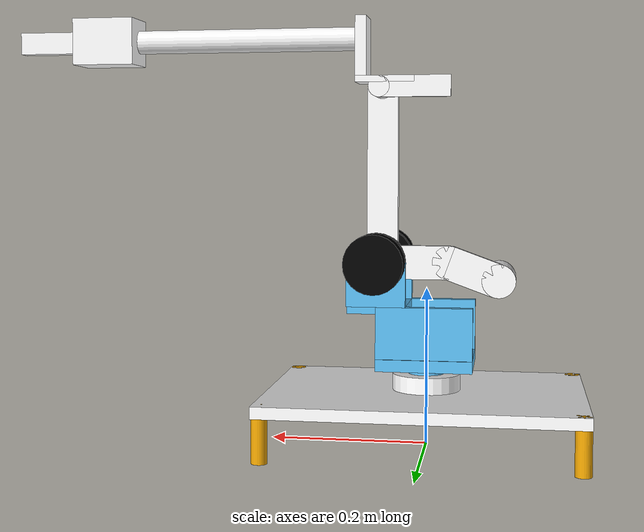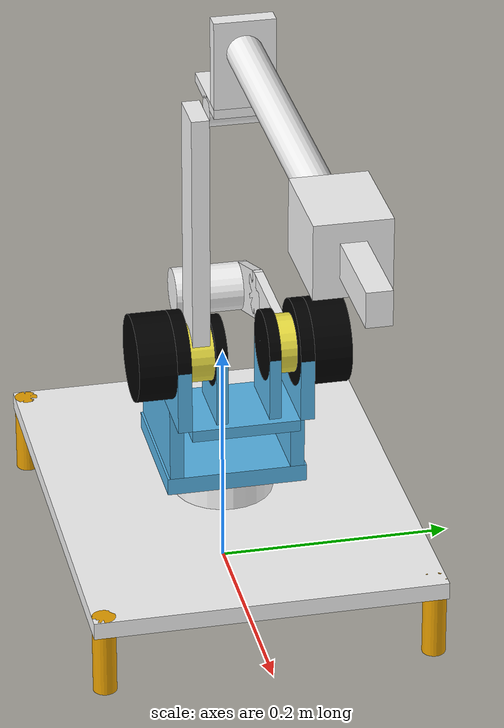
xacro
<?xml version="1.0"?>
<robot xmlns:xacro="http://www.ros.org/wiki/xacro" name="vr">
    <xacro:arg name="initial_positions_file" default="initial_positions.yaml" />

    <!-- Import vr_hand urdf file -->
    <xacro:include filename="$(find vr)/config/vr.urdf" />

    <!-- Import control_xacro -->
    <xacro:include filename="vr.ros2_control.xacro" />

    <xacro:vr_ros2_control name="vr" initial_positions_file="$(arg initial_positions_file)"/>

</robot>

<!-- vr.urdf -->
<robot name="vr">

    <material name="grey">
        <color rgba="0.97 0.97 0.97 1"/>
    </material>

    <material name="black">
        <color rgba="0 0 0 1"/>
    </material>

    <link name="base_link">
        <visual>
          <origin rpy="0 0 0" xyz="0 0 0.0625" />
          <geometry>
            <box size ="0.4 0.3 0.015"/>
          </geometry>

          <material name="grey"/>
        </visual>

        <collision>
            <origin rpy="0 0 0" xyz="0 0 0.0625" />
            <geometry>
              <box size ="0.4 0.3 0.015"/>
            </geometry>
        </collision>

        <visual>
            <origin rpy="0 0 0" xyz="0.19 0.14 0.035" />
            <geometry>
                <cylinder radius="0.01" length="0.07" />
            </geometry>

        </visual>

        <collision>
           <origin rpy="0 0 0" xyz="0.19 0.14 0.035" />
            <geometry>
                <cylinder radius="0.01" length="0.07" />
            </geometry>
        </collision>

        <visual>
            <origin rpy="0 0 0" xyz="-0.19 0.14 0.035" />
            <geometry>
                <cylinder radius="0.01" length="0.07" />
            </geometry>

        </visual>

        <collision>
            <origin rpy="0 0 0" xyz="-0.19 0.14 0.035" />
            <geometry>
                <cylinder radius="0.01" length="0.07" />
            </geometry>
        </collision>
        <visual>
            <origin rpy="0 0 0" xyz="0.19 -0.14 0.035" />
            <geometry>
                <cylinder radius="0.01" length="0.07" />
            </geometry>

        </visual>

        <collision>
            <origin rpy="0 0 0" xyz="0.19 -0.14 0.035" />
            <geometry>
                <cylinder radius="0.01" length="0.07" />
            </geometry>
        </collision>

        <visual>
            <origin rpy="0 0 0" xyz="-0.19 -0.14 0.035" />
            <geometry>
                <cylinder radius="0.01" length="0.07" />
            </geometry>

        </visual>

        <collision>
            <origin rpy="0 0 0" xyz="-0.19 -0.14 0.035" />
            <geometry>
                <cylinder radius="0.01" length="0.07" />
            </geometry>
        </collision>
    </link>

    <joint name="base_link__link_01" type="revolute">
        <axis xyz="0 0 1"/>
        <limit effort="1000.0" lower="-3.14" upper="3.14" velocity="0.5"/>
        <origin rpy="0 0 0" xyz="0 0 0.07"/>
        <parent link="base_link"/>
        <child link="link_01"/>

    </joint>

    <link name="link_01">
        <visual>
            <origin rpy="0 0 0" xyz="0 0 0.0105" />
            <geometry>
                <cylinder radius="0.043" length="0.021" />
            </geometry>
            <material name="grey"/>
        </visual>

        <collision>
            <origin rpy="0 0 0" xyz="0 0 0.0105" />
            <geometry>
                <cylinder radius="0.043" length="0.021" />
            </geometry>
        </collision>

        <visual>
            <origin rpy="0 0 0" xyz="0 0 0.026" />
            <geometry>
                <cylinder radius="0.023" length="0.01" />
            </geometry>
        </visual>

        <collision>
           <origin rpy="0 0 0" xyz="0 0 0.026" />
            <geometry>
                <cylinder radius="0.023" length="0.01" />
            </geometry>
        </collision>

        <visual>
            <origin rpy="0 0 0" xyz="0 0 0.0385" />
            <geometry>
                <box size ="0.120 0.120 0.015"/>
            </geometry>

        </visual>

        <collision>
            <origin rpy="0 0 0" xyz="0 0 0.0385" />
            <geometry>
                <box size ="0.120 0.120 0.015"/>
            </geometry>
        </collision>

        <visual>
            <origin rpy="0 0 0" xyz="0 0.052 0.0785" />
            <geometry>
                <box size ="0.120 0.012 0.065"/>
            </geometry>

        </visual>

        <collision>
            <origin rpy="0 0 0" xyz="0 0.052 0.0785" />
            <geometry>
                <box size ="0.120 0.012 0.065"/>
            </geometry>
        </collision>

        <visual>
            <origin rpy="0 0 0" xyz="0.06 0.052 0.1385" />
            <geometry>
                <box size ="0.074 0.012 0.055"/>
            </geometry>

        </visual>

       <collision>
             <origin rpy="0 0 0" xyz="0.06 0.052 0.1385" />
            <geometry>
                <box size ="0.074 0.012 0.055"/>
            </geometry>
       </collision>

        <visual>
            <origin rpy="0 0 0" xyz="0.0 -0.052 0.0785" />
            <geometry>
                <box size ="0.120 0.012 0.065"/>
            </geometry>

        </visual>

        <collision>
            <origin rpy="0 0 0" xyz="0.0 -0.052 0.0785" />
            <geometry>
                <box size ="0.120 0.012 0.065"/>
            </geometry>
        </collision>

        <visual>
            <origin rpy="0 0 0" xyz="0.06 -0.052 0.1385" />
            <geometry>
                <box size ="0.074 0.012 0.055"/>
            </geometry>

        </visual>

        <collision>
           <origin rpy="0 0 0" xyz="0.06 -0.052 0.1385" />
            <geometry>
                <box size ="0.074 0.012 0.055"/>
            </geometry>
        </collision>

        <visual>
            <origin rpy="1.57 0 0" xyz="0.06 -0.052 0.166" />
            <geometry>
                <cylinder radius="0.037" length="0.012"/>
            </geometry>
            <material name="black"/>

        </visual>

        <collision>
            <origin rpy="1.57 0 0" xyz="0.06 -0.052 0.166" />
            <geometry>
                <cylinder radius="0.037" length="0.012"/>
            </geometry>
        </collision>

        <visual>
            <origin rpy="1.57 0 0" xyz="0.06 0.052 0.166" />
            <geometry>
                <cylinder radius="0.037" length="0.012"/>
            </geometry>
            <material name="black"/>
        </visual>

        <collision>
            <origin rpy="1.57 0 0" xyz="0.06 0.052 0.166" />
            <geometry>
                <cylinder radius="0.037" length="0.012"/>
            </geometry>
        </collision>

        <visual>
            <origin rpy="0 0 0" xyz="0.06 0 0.106" />
            <geometry>
                <box size ="0.074 0.092 0.01"/>
            </geometry>

        </visual>

        <collision>
            <origin rpy="0 0 0" xyz="0.06 0 0.106" />
            <geometry>
                <box size ="0.074 0.092 0.01"/>
            </geometry>
        </collision>

        <visual>
            <origin rpy="0 0 0" xyz="0.06 -0.019 0.1385" />
            <geometry>
                <box size ="0.06 0.01 0.055"/>
            </geometry>

        </visual>

        <collision>
           <origin rpy="0 0 0" xyz="0.06 -0.019 0.1385" />
            <geometry>
                <box size ="0.06 0.01 0.055"/>
            </geometry>
        </collision>

        <visual>
            <origin rpy="0 0 0" xyz="0.06 0.026 0.1385" />
            <geometry>
                <box size ="0.06 0.01 0.055"/>
            </geometry>

        </visual>
        <collision>
            <origin rpy="0 0 0" xyz="0.06 0.026 0.1385" />
            <geometry>
                <box size ="0.06 0.01 0.055"/>
            </geometry>
        </collision>

        <visual>
            <origin rpy="1.57 0 0" xyz="0.06 0.026 0.166" />
            <geometry>
                <cylinder radius="0.03" length="0.01"/>
            </geometry>
            <material name="black"/>

        </visual>

        <collision>
             <origin rpy="1.57 0 0" xyz="0.06 0.026 0.166" />
            <geometry>
                <cylinder radius="0.03" length="0.01"/>
            </geometry>
        </collision>

        <visual>
            <origin rpy="1.57 0 0" xyz="0.06 -0.019 0.166" />
            <geometry>
                <cylinder radius="0.03" length="0.01"/>
            </geometry>
            <material name="black"/>

        </visual>

        <collision>
            <origin rpy="1.57 0 0" xyz="0.06 -0.019 0.166" />
            <geometry>
                <cylinder radius="0.03" length="0.01"/>
            </geometry>
        </collision>

    </link>

    <joint name="link_01__link_02" type="revolute">
        <axis xyz="0 0 1"/>
        <limit effort="1000.0" lower="-3.14" upper="3.14" velocity="0.5"/>
        <origin rpy="1.57 0 0" xyz="0.06 0 0.166"/>
        <parent link="link_01"/>

        <child link="link_02"/>
    </joint>

    <link name="link_02">

        <visual>
            <origin rpy="0 0 0" xyz="0 0 0.074" />
            <geometry>
                <cylinder radius="0.037" length="0.032"/>
            </geometry>
            <material name="black"/>

        </visual>

        <collision>
            <origin rpy="0 0 0" xyz="0 0 0.074" />
            <geometry>
                <cylinder radius="0.037" length="0.032"/>
            </geometry>
        </collision>

        <visual>
            <origin rpy="0 0 0" xyz="0 0 -0.074" />
            <geometry>
                <cylinder radius="0.037" length="0.032"/>
            </geometry>
            <material name="black"/>

        </visual>

        <collision>
           <origin rpy="0 0 0" xyz="0 0 -0.074" />
            <geometry>
                <cylinder radius="0.037" length="0.032"/>
            </geometry>
        </collision>

    </link>

    <joint name="link_02__link_02_par" type="fixed">
        <origin rpy="0 0 0" xyz="0 0.11 0"/>
        <parent link="link_02"/>
        <child link="link_02_par"/>
    </joint>

    <link name="link_02_par">

       <visual>
            <origin rpy="0 0 0" xyz="0 0 0.0345" />
            <geometry>
                <box size ="0.040 0.220 0.015"/>
            </geometry>

            <material name="grey"/>
        </visual>

       <collision>
            <origin rpy="0 0 0" xyz="0 0 0.0345" />
            <geometry>
                <box size ="0.040 0.220 0.015"/>
            </geometry>
        </collision>

        <visual>
            <origin rpy="0 0 0" xyz="0 -0.11 0.041" />
            <geometry>
                <cylinder radius="0.025" length="0.034"/>
            </geometry>

        </visual>

       <collision>
             <origin rpy="0 0 0" xyz="0 -0.11 0.041" />
            <geometry>
                <cylinder radius="0.025" length="0.034"/>
            </geometry>
        </collision>

        <visual>
            <origin rpy="0 0 0" xyz="0 -0.11 -0.0445" />
            <geometry>
                <cylinder radius="0.025" length="0.027"/>
            </geometry>

        </visual>

        <collision>
            <origin rpy="0 0 0" xyz="0 -0.11 -0.0445" />
            <geometry>
                <cylinder radius="0.025" length="0.027"/>
            </geometry>
        </collision>

    </link>

    <joint name="link_02__link_02_mim" type="revolute">
        <axis xyz="0 0 1"/>
        <limit effort="1000.0" lower="-3.14" upper="3.14" velocity="0.5"/>
        <origin rpy="0 0 1.57" xyz="0 0.220 0"/>
        <parent link="link_02"/>
        <child link="link_02_mim"/>
        <mimic joint="link_01__link_02" multiplier="-1" offset="0" />
    </joint>

    <link name="link_02_mim">

        <visual>
            <origin rpy="0 0 0" xyz="0 0.0 0.0" />
            <geometry>
                <cylinder radius="0.0135" length="0.051"/>
            </geometry>
            <material name="grey"/>
        </visual>

        <collision>
           <origin rpy="0 0 0" xyz="0 0.0 0.0" />
            <geometry>
                <cylinder radius="0.0135" length="0.051"/>
            </geometry>
        </collision>

    </link>

    <joint name="link_02_mim__link_03" type="revolute">
        <axis xyz="0 0 1"/>
        <limit effort="1000.0" lower="-3.14" upper="3.14" velocity="0.5"/>
        <origin rpy="0 0 0" xyz="0.0 0.0 0.0"/>
        <parent link="link_02_mim"/>
        <child link="link_03"/>
    </joint>

    <link name="link_03">

        <visual>
            <origin rpy="0 0 0" xyz="0.0511198 -0.023 0" />
            <geometry>
                <box size ="0.0752396 0.014 0.051"/>
            </geometry>
            <material name="grey"/>

        </visual>

        <collision>
            <origin rpy="0 0 0" xyz="0.0511198 -0.023 0" />
            <geometry>
                <box size ="0.0752396 0.014 0.051"/>
            </geometry>
        </collision>

        <visual>
            <origin rpy="0 0 0" xyz="0.0 0.045 -0.021" />
            <geometry>
                <box size ="0.027 0.09 0.008"/>
            </geometry>
            <material name="grey"/>

        </visual>

        <collision>
            <origin rpy="0 0 0" xyz="0.0 0.045 -0.021" />
            <geometry>
                <box size ="0.027 0.09 0.008"/>
            </geometry>
        </collision>

        <visual>
            <origin rpy="0 0 0" xyz="0.0095 0.00724 0.0" />
            <geometry>
                <box size ="0.008 0.0745 0.051"/>
            </geometry>
            <material name="grey"/>

        </visual>

        <collision>
             <origin rpy="0 0 0" xyz="0.0095 0.00724 0.0" />
            <geometry>
                <box size ="0.008 0.0745 0.051"/>
            </geometry>
        </collision>

    </link>

    <joint name="link_01__link_03_mim" type="revolute">
        <axis xyz="0 0 1"/>
        <limit effort="1000.0" lower="-3.14" upper="3.14" velocity="0.5"/>
        <origin rpy="1.57 0 0" xyz="0.06 0 0.166"/>
        <parent link="link_01"/>
        <child link="link_03_mim"/>
        <mimic joint="link_02_mim__link_03" multiplier="1" offset="0" />

    </joint>

    <link name="link_03_mim">
        <visual>
            <origin rpy="0 0 0" xyz="-0.045 0.00 -0.038" />
            <geometry>
                <box size ="0.09 0.042 0.008"/>
            </geometry>
            <material name="grey"/>

        </visual>

        <collision>
           <origin rpy="0 0 0" xyz="-0.045 0.00 -0.038" />
            <geometry>
                <box size ="0.09 0.042 0.008"/>
            </geometry>
        </collision>

        <visual>
            <origin rpy="0 0 0.35" xyz="-0.12 -0.011 -0.038" />
            <geometry>
                <box size ="0.064 0.042 0.008"/>
            </geometry>
            <material name="grey"/>

        </visual>

        <collision>
            <origin rpy="0 0 0.35" xyz="-0.12 -0.011 -0.038" />
            <geometry>
                <box size ="0.064 0.042 0.008"/>
            </geometry>

          </collision>

        <visual>
            <origin rpy="0 0 0" xyz="-0.09 0.0 -0.038" />
            <geometry>
                <cylinder radius="0.021" length="0.008" />
            </geometry>
            <material name="grey"/>
        </visual>

	<collision>
            <origin rpy="0 0 0" xyz="-0.09 0.0 -0.038" />
            <geometry>
                <cylinder radius="0.021" length="0.008" />
            </geometry>

          </collision>

        <visual>
            <origin rpy="0 0 0" xyz="-0.151 -0.022 -0.0085" />
            <geometry>
                <cylinder radius="0.021" length="0.067" />
            </geometry>
            <material name="grey"/>
        </visual>

	<collision>
             <origin rpy="0 0 0" xyz="-0.151 -0.022 -0.0085" />
            <geometry>
                <cylinder radius="0.021" length="0.067" />
            </geometry>

          </collision>

    </link>

    <joint name="link_03__link_04" type="revolute">
        <axis xyz="0 0 1"/>
        <limit effort="1000.0" lower="-3.14" upper="3.14" velocity="0.5"/>
        <origin rpy="1.57 0 0" xyz="0.0615 -0.03 0"/>
        <parent link="link_03"/>
        <child link="link_04"/>
    </joint>

    <link name="link_04">
        <visual>
            <origin rpy="0 0 0" xyz="0 0 0.1435" />
            <geometry>
                <cylinder radius="0.015" length="0.287" />
            </geometry>
            <material name="grey"/>
        </visual>

        <collision>
            <origin rpy="0 0 0" xyz="0 0 0.1435" />
            <geometry>
                <cylinder radius="0.015" length="0.287" />
            </geometry>
          </collision>

          <visual>
            <origin rpy="0 0 0" xyz="0 0 0.329" />
            <geometry>
                <box size ="0.06 0.06 0.08"/>
            </geometry>
            <material name="grey"/>

        </visual>

        <collision>
              <origin rpy="0 0 0" xyz="0 0 0.329" />
            <geometry>
                <box size ="0.06 0.06 0.08"/>
            </geometry>
          </collision>
    </link>

    <joint name="link_04__link_05" type="revolute">
        <axis xyz="0 0 1"/>
        <limit effort="1000.0" lower="-3.14" upper="3.14" velocity="0.5"/>
        <origin rpy="-1.57 0 0" xyz="0 0 0.345"/>
        <parent link="link_04"/>
        <child link="link_05"/>
    </joint>

    <link name="link_05">

        <visual>
            <origin rpy="0 0 0" xyz="0 0 0" />
            <geometry>
                <cylinder radius="0.0225" length="0.055" />
            </geometry>
            <material name="black"/>
        </visual>

        <collision>
             <origin rpy="0 0 0" xyz="0 0 0" />
            <geometry>
                <cylinder radius="0.0225" length="0.055" />
            </geometry>
        </collision>

    </link>

    <joint name="link_05__link_06" type="revolute">
        <axis xyz="0 0 1"/>
        <limit effort="1000.0" lower="-3.14" upper="3.14" velocity="0.5"/>
        <origin rpy="1.57 0 0" xyz="0 -0.1025 0"/>
        <parent link="link_05"/>
        <child link="link_06"/>
    </joint>

    <link name="link_06">
        <visual>
            <origin rpy="0 0 0" xyz="0 0 -0.04" />
            <geometry>
                <box size ="0.028 0.02 0.08"/>
            </geometry>
            <material name="grey"/>

        </visual>

        <collision>
             <origin rpy="0 0 0" xyz="0 0 -0.04" />
            <geometry>
                <box size ="0.028 0.02 0.08"/>
            </geometry>
        </collision>

    </link>

</robot>
